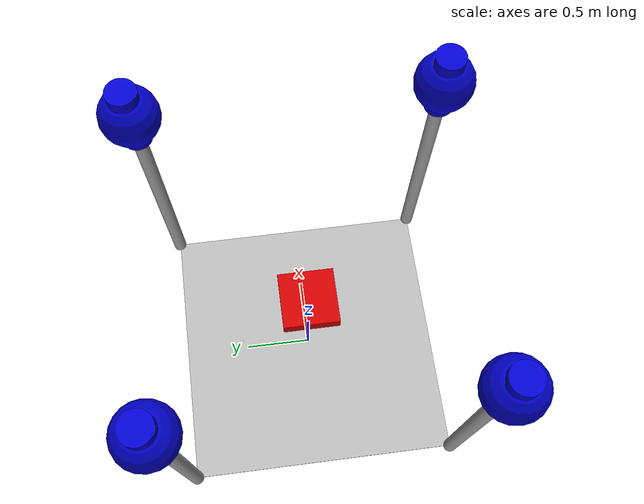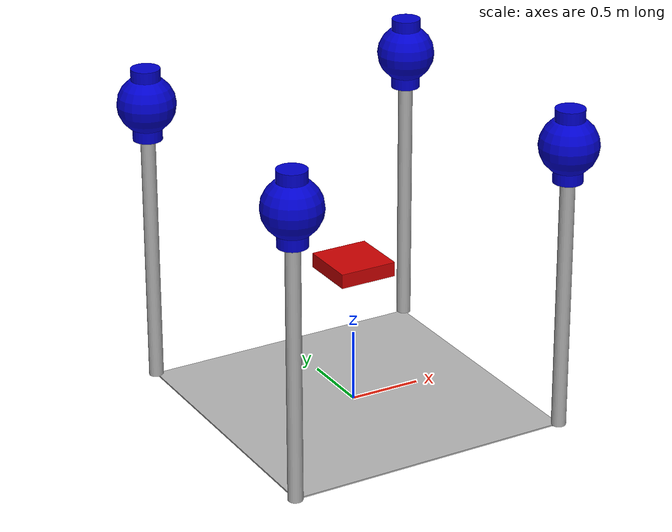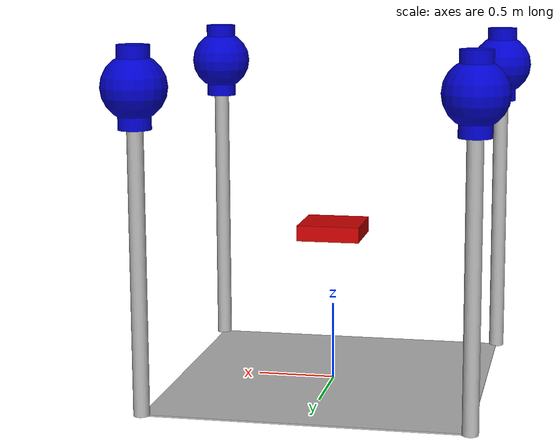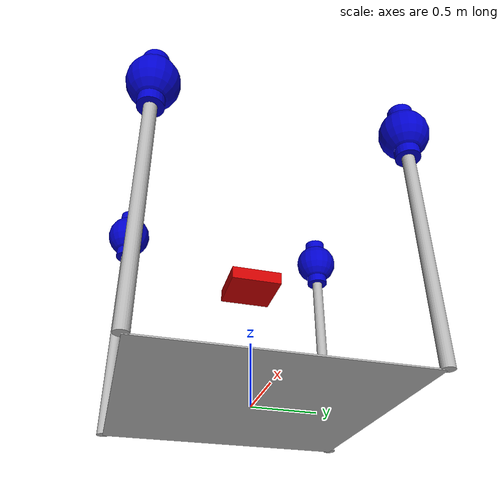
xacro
<?xml version="1.0"?>
<robot xmlns:xacro="http://www.ros.org/wiki/xacro" name="cdpr">
    <!-- Properties remain the same -->
    <xacro:property name="frame_size" value="2.0"/>
    <xacro:property name="frame_height" value="2.0"/>
    <xacro:property name="pillar_radius" value="0.05"/>
    <xacro:property name="platform_width" value="0.4"/>
    <xacro:property name="platform_length" value="0.4"/>
    <xacro:property name="platform_height" value="0.1"/>
    <xacro:property name="platform_mass" value="1.0"/>
    <xacro:property name="cable_radius" value="0.1"/>
    <xacro:property name="cable_mass" value="0.1"/>
    <xacro:property name="cable_damping" value="1.0"/>

    <!-- Colors -->
    <material name="gray"><color rgba="0.7 0.7 0.7 1"/></material>
    <material name="red"><color rgba="0.8 0.0 0.0 1"/></material>
    <material name="blue"><color rgba="0.0 0.0 0.8 1"/></material>

    <!-- Base world link -->
    <link name="world"/>

    <!-- Static base link -->
    <link name="static_base">
        <inertial>
            <mass value="1.0"/>
            <inertia ixx="1" iyy="1" izz="1" ixy="0" ixz="0" iyz="0"/>
        </inertial>
    </link>

    <joint name="world_to_static" type="fixed">
        <parent link="world"/>
        <child link="static_base"/>
    </joint>

    <!-- Frame base -->
    <link name="frame_base">
        <visual>
            <geometry>
                <box size="${frame_size} ${frame_size} 0.01"/>
            </geometry>
            <material name="gray"/>
        </visual>
        <collision>
            <geometry>
                <box size="${frame_size} ${frame_size} 0.01"/>
            </geometry>
        </collision>
        <inertial>
            <mass value="1.0"/>
            <inertia ixx="0.083" iyy="0.083" izz="0.166" ixy="0" ixz="0" iyz="0"/>
        </inertial>
    </link>

    <!-- Connect frame base to static base -->
    <joint name="base_joint" type="fixed">
        <parent link="static_base"/>
        <child link="frame_base"/>
        <origin xyz="0 0 0" rpy="0 0 0"/>
    </joint>

    <!-- Platform slider mechanism -->
    <link name="platform_x_slider">
        <inertial>
            <mass value="0.1"/>
            <inertia ixx="0.001" iyy="0.001" izz="0.001" ixy="0" ixz="0" iyz="0"/>
        </inertial>
    </link>

    <joint name="platform_x_joint" type="prismatic">
        <parent link="frame_base"/>
        <child link="platform_x_slider"/>
        <axis xyz="1 0 0"/>
        <limit lower="${-frame_size/2}" upper="${frame_size/2}" effort="1000" velocity="1000"/>
        <origin xyz="0 0 ${frame_height/2}" rpy="0 0 0"/>
    </joint>

    <link name="platform_y_slider">
        <inertial>
            <mass value="0.1"/>
            <inertia ixx="0.001" iyy="0.001" izz="0.001" ixy="0" ixz="0" iyz="0"/>
        </inertial>
    </link>

    <joint name="platform_y_joint" type="prismatic">
        <parent link="platform_x_slider"/>
        <child link="platform_y_slider"/>
        <axis xyz="0 1 0"/>
        <limit lower="${-frame_size/2}" upper="${frame_size/2}" effort="1000" velocity="1000"/>
        <origin xyz="0 0 0" rpy="0 0 0"/>
    </joint>

    <link name="platform_z_slider">
        <inertial>
            <mass value="0.1"/>
            <inertia ixx="0.001" iyy="0.001" izz="0.001" ixy="0" ixz="0" iyz="0"/>
        </inertial>
    </link>

    <joint name="platform_z_joint" type="prismatic">
        <parent link="platform_y_slider"/>
        <child link="platform_z_slider"/>
        <axis xyz="0 0 1"/>
        <limit lower="0" upper="${frame_height}" effort="1000" velocity="1000"/>
        <origin xyz="0 0 0" rpy="0 0 0"/>
    </joint>

    <!-- Platform -->
    <link name="platform">
        <visual>
            <geometry>
                <box size="${platform_width} ${platform_length} ${platform_height}"/>
            </geometry>
            <material name="red"/>
        </visual>
        <collision>
            <geometry>
                <box size="${platform_width} ${platform_length} ${platform_height}"/>
            </geometry>
        </collision>
        <inertial>
            <mass value="${platform_mass}"/>
            <inertia
                ixx="${platform_mass * (platform_length*platform_length + platform_height*platform_height) / 12.0}"
                iyy="${platform_mass * (platform_width*platform_width + platform_height*platform_height) / 12.0}"
                izz="${platform_mass * (platform_width*platform_width + platform_length*platform_length) / 12.0}"
                ixy="0.0" ixz="0.0" iyz="0.0"/>
        </inertial>
    </link>

    <joint name="platform_orientation" type="fixed">
        <parent link="platform_z_slider"/>
        <child link="platform"/>
        <origin xyz="0 0 0" rpy="0 0 0"/>
    </joint>

    <!-- Gazebo tags for pillars -->
    <xacro:macro name="pillar_gazebo" params="name">
        <gazebo reference="${name}">
            <static>true</static>
            <self_collide>false</self_collide>
        </gazebo>
    </xacro:macro>

    <!-- Frame pillars macro -->
    <xacro:macro name="create_pillar" params="name x y">
        <link name="${name}">
            <visual>
                <geometry>
                    <cylinder radius="${pillar_radius}" length="${frame_height}"/>
                </geometry>
                <material name="gray"/>
                <origin xyz="0 0 ${frame_height/2}"/>
            </visual>
            <collision>
                <geometry>
                    <cylinder radius="${pillar_radius}" length="${frame_height}"/>
                </geometry>
                <origin xyz="0 0 ${frame_height/2}"/>
            </collision>
            <inertial>
                <mass value="1.0"/>
                <inertia ixx="0.145833" iyy="0.145833" izz="0.125" ixy="0" ixz="0" iyz="0"/>
                <origin xyz="0 0 ${frame_height/2}"/>
            </inertial>
        </link>

        <joint name="${name}_joint" type="fixed">
            <parent link="frame_base"/>
            <child link="${name}"/>
            <origin xyz="${x} ${y} 0"/>
        </joint>
    </xacro:macro>

    <!-- Cable assembly macro -->
    <xacro:macro name="create_cable" params="name parent_link mount_x mount_y mount_z">
        <link name="${name}_mount">
            <visual>
                <geometry>
                    <sphere radius="${cable_radius*2}"/>
                </geometry>
                <material name="blue"/>
            </visual>
            <inertial>
                <mass value="0.01"/>
                <inertia ixx="0.001" iyy="0.001" izz="0.001" ixy="0" ixz="0" iyz="0"/>
            </inertial>
        </link>

        <link name="${name}_cable">
            <visual>
                <geometry>
                    <cylinder radius="${cable_radius}" length="0.5"/>
                </geometry>
                <material name="blue"/>
            </visual>
            <inertial>
                <mass value="${cable_mass}"/>
                <inertia
                    ixx="${cable_mass * 0.01}"
                    iyy="${cable_mass * 0.01}"
                    izz="${cable_mass * 0.001}"
                    ixy="0" ixz="0" iyz="0"/>
            </inertial>
        </link>

        <joint name="${name}_mount_joint" type="fixed">
            <parent link="${parent_link}"/>
            <child link="${name}_mount"/>
            <origin xyz="${mount_x} ${mount_y} ${mount_z}"/>
        </joint>

        <joint name="${name}_cable_joint" type="revolute">
            <parent link="${name}_mount"/>
            <child link="${name}_cable"/>
            <axis xyz="1 0 0"/>
            <limit lower="${-pi}" upper="${pi}" effort="1000" velocity="1000"/>
            <dynamics damping="${cable_damping}"/>
        </joint>
    </xacro:macro>

    <!-- Create frame -->
    <xacro:create_pillar name="pillar_1" x="${frame_size/2}" y="${frame_size/2}"/>
    <xacro:create_pillar name="pillar_2" x="${frame_size/2}" y="${-frame_size/2}"/>
    <xacro:create_pillar name="pillar_3" x="${-frame_size/2}" y="${frame_size/2}"/>
    <xacro:create_pillar name="pillar_4" x="${-frame_size/2}" y="${-frame_size/2}"/>

    <!-- Create cables -->
    <xacro:create_cable name="cable1"
        parent_link="pillar_1"
        mount_x="0" mount_y="0" mount_z="${frame_height}"/>

    <xacro:create_cable name="cable2"
        parent_link="pillar_2"
        mount_x="0" mount_y="0" mount_z="${frame_height}"/>

    <xacro:create_cable name="cable3"
        parent_link="pillar_3"
        mount_x="0" mount_y="0" mount_z="${frame_height}"/>

    <xacro:create_cable name="cable4"
        parent_link="pillar_4"
        mount_x="0" mount_y="0" mount_z="${frame_height}"/>

    <!-- Gazebo-specific properties -->
    <gazebo reference="world">
        <static>true</static>
    </gazebo>

    <gazebo reference="static_base">
        <static>true</static>
    </gazebo>

    <gazebo reference="frame_base">
        <static>true</static>
        <self_collide>false</self_collide>
    </gazebo>

    <gazebo reference="platform">
        <material>Gazebo/Red</material>
        <mu1>0.2</mu1>
        <mu2>0.2</mu2>
        <self_collide>false</self_collide>
        <gravity>true</gravity>
    </gazebo>

    <!-- Physics properties for sliders -->
    <gazebo reference="platform_x_slider">
        <self_collide>false</self_collide>
        <gravity>true</gravity>
    </gazebo>

    <gazebo reference="platform_y_slider">
        <self_collide>false</self_collide>
        <gravity>true</gravity>
    </gazebo>

    <gazebo reference="platform_z_slider">
        <self_collide>false</self_collide>
        <gravity>true</gravity>
    </gazebo>

    <!-- Gazebo plugins -->
    <gazebo>
        <plugin filename="gz-sim-joint-state-publisher-system"
                name="gz::sim::systems::JointStatePublisher">
            <joint_name>platform_x_joint</joint_name>
            <joint_name>platform_y_joint</joint_name>
            <joint_name>platform_z_joint</joint_name>
            <joint_name>cable1_cable_joint</joint_name>
            <joint_name>cable2_cable_joint</joint_name>
            <joint_name>cable3_cable_joint</joint_name>
            <joint_name>cable4_cable_joint</joint_name>
        </plugin>

        <plugin filename="gz-sim-physics-system"
                name="gz::sim::systems::Physics">
            <engine>dart</engine>
            <dart>
                <solver>
                    <solver_type>dantzig</solver_type>
                </solver>
            </dart>
            <update_rate>1000</update_rate>
        </plugin>
    </gazebo>

    <!-- Material properties -->
    <gazebo reference="platform">
        <material>Gazebo/Red</material>
        <mu1>0.2</mu1>
        <mu2>0.2</mu2>
    </gazebo>

</robot>
